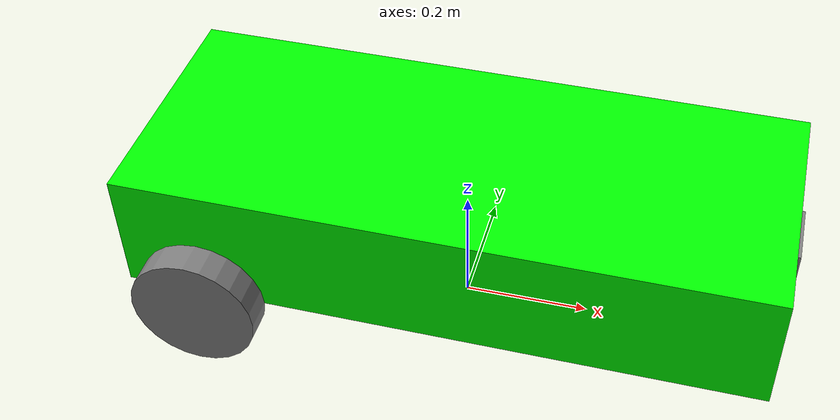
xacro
<?xml version="1.0"?>
<robot name="bot" xmlns:xacro="http://www.ros.org/wiki/xacro" >
    <xacro:include filename="mobile_base.xacro" />
    <xacro:include filename="common_properties.xacro" />
    <xacro:include filename="mobile_base_gazebo.xacro" />
    <xacro:include filename="camera.xacro" />
</robot>

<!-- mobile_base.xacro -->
<robot xmlns:xacro="http://www.ros.org/wiki/xacro" >
    <xacro:property name="base_length" value="1.0" />
    <xacro:property name="base_width" value="0.4" />
    <xacro:property name="base_height" value="0.2" />
    <xacro:property name="wheel_radius" value="0.1" />
    <xacro:property name="wheel_length" value="0.05" />

    <xacro:macro name="box_inertia" params="m x y z o_xyz o_rpy">
        <inertial>
            <mass value="${m}" />
            <origin xyz="${o_xyz}" rpy="${o_rpy}" />
            <inertia ixx="${(m/12)*(y*y + z*z)}" ixy="0" ixz="0"
                     iyy="${(m/12)*(x*x + z*z)}" iyz="0"
                     izz="${(m/12)*(y*y + x*x)}" />
        </inertial>
    </xacro:macro>
    <xacro:macro name="wheel_inertia" params="m x z o_xyz o_rpy">
        <inertial>
            <mass value="${m}" />
            <origin xyz="${o_xyz}" rpy="${o_rpy}" />
            <inertia ixx="${(m/12)*(3*x*x + z*z)}" ixy="0" ixz="0"
                     iyy="${(m/12)*(3*x*x + z*z)}" iyz="0"
                     izz="${(m/2)*(x*x)}" />
        </inertial>
    </xacro:macro>

    <xacro:macro name="caster_inertia" params="m x o_xyz o_rpy">
        <inertial>
            <mass value="${m}" />
            <origin xyz="${o_xyz}" rpy="${o_rpy}" />
            <inertia ixx="${(2 * m / 5)*(x*x)}" ixy="0" ixz="0"
                     iyy="${(2 * m / 5)*(x*x)}" iyz="0"
                     izz="${(2 * m / 5)*(x*x)}" />
        </inertial>
    </xacro:macro>

    <link name="base_footprint">
        <!-- empty -->
    </link>

    <link name="base_link">
        <visual>
            <geometry>
                <box size="${base_length} ${base_width} ${base_height}" />
            </geometry>
            <origin xyz="0 0 ${base_height / 2.0}" rpy="0 0 0" />
            <material name="green" />
        </visual>
        <collision>
            <geometry>
                <box size="${base_length} ${base_width} ${base_height}" />
            </geometry>
            <origin xyz="0 0 ${base_height / 2.0}" rpy="0 0 0" />
        </collision>
        <xacro:box_inertia m="5.0" x="${base_length}" y="${base_width}" z="${base_height}" o_xyz="0 0 ${base_height / 2.0}"
                                                                                           o_rpy="0 0 0" />

    </link>

    <xacro:macro name="wheel_link" params="prefix">
        <link name="${prefix}_wheel_link">
            <visual>
                <geometry>
                    <cylinder radius="${wheel_radius}" length="${wheel_length}" />
                </geometry>
                <origin xyz="0 0 0" rpy="${pi / 2.0} 0 0" />
                <material name="grey" />
            </visual>
            <collision>
                <geometry>
                    <sphere radius="${wheel_radius}" />
                </geometry>
                <origin xyz="0 0 0" rpy="0 0 0" />
            </collision>
            <xacro:wheel_inertia m="1.0" x="${wheel_radius}" z="${wheel_length}" o_xyz="0 0 0"
                                                                               o_rpy="${pi / 2.0} 0 0" />
        </link>
    </xacro:macro>

    <xacro:wheel_link prefix="right" />
    <xacro:wheel_link prefix="left" />

    <link name="caster_wheel_link">
        <visual>
            <geometry>
                <sphere radius="0.05" />
            </geometry>
            <origin xyz="0 0 0" rpy="0 0 0" />
            <material name="grey" />
        </visual>
        <collision>
            <geometry>
                <sphere radius="0.05" />
            </geometry>
            <origin xyz="0 0 0" rpy="0 0 0" />
        </collision>
        <xacro:caster_inertia m="0.5" x="0.05" o_xyz="0 0 0"
                                               o_rpy="0 0 0" />
    </link>
    <joint name="base_joint" type="fixed">
        <parent link="base_footprint" />
        <child link="base_link" />
        <origin xyz="0 0 0.1" rpy="0 0 0" />
    </joint>
    <joint name="base_caster_wheel_joint" type="fixed">
        <parent link="base_link" />
        <child link="caster_wheel_link" />
        <origin xyz="${base_length * (3.0/8.0)} 0 -0.05" rpy="0 0 0" />
    </joint>
    <joint name="left_wheel_base_joint" type="continuous">
        <parent link="base_link" />
        <child link="left_wheel_link" />
        <origin xyz="${-base_length * (3.0/8.0)} ${(base_width / 2.0) + (wheel_length / 2.0)} 0" rpy="0 0 0" />
        <axis xyz="0 1 0" />
        <limit lower="-1.57" upper="1.57" velocity="100" effort="100" />
    </joint>
    <joint name="right_wheel_base_joint" type="continuous">
        <parent link="base_link" />
        <child link="right_wheel_link" />
        <origin xyz="${-base_length * (3.0/8.0)} ${(-base_width / 2.0) + (-wheel_length / 2.0)} 0" rpy="0 0 0" />
        <axis xyz="0 1 0" />
        <limit lower="-1.57" upper="1.57" velocity="100" effort="100" />
    </joint>

</robot>

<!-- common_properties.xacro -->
<robot xmlns:xacro="http://www.ros.org/wiki/xacro" >
    <material name="green">
        <color rgba="0 1 0 1" />
    </material>

    <material name="grey">
        <color rgba="0.5 0.5 0.5 1" />
    </material>

    <material name="orange">
        <color rgba="1 0.5 0 1" />
    </material>

    <material name="yellow">
        <color rgba="1 1 0 1" />
    </material>

</robot>

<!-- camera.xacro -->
<robot xmlns:xacro="http://www.ros.org/wiki/xacro" >
    <xacro:property name="box_length" value="0.01" />
    <xacro:property name="box_width" value="0.1" />
    <xacro:property name="box_height" value="0.1" />
    <link name="camera_link">
        <visual>
            <geometry>
                <box size="${box_length} ${box_width} ${box_height}" />
            </geometry>
            <origin xyz="0 0 0" rpy="0 0 0" />
            <material name="grey" />
        </visual>
        <collision>
            <geometry>
                <box size="${box_length} ${box_width} ${box_height}" />
            </geometry>
            <origin xyz="0 0 0" rpy="0 0 0" />
        </collision>
        <xacro:box_inertia m="0.5" x="${box_length}" y="${box_width}" z="${box_height}" o_xyz="0 0 0"
                                                                                           o_rpy="0 0 0" />
    </link>
    <joint name="base_camera_joint" type="fixed">
        <parent link="base_link"/>
        <child link="camera_link" />
        <origin xyz="${base_length / 2.0 + box_length / 2.0} 0 ${base_height / 2.0}" rpy="0 0 0"/>
    </joint>

    <gazebo reference="camera_link">
        <sensor name="camera" type="camera">
            <camera>
                <horizontal_fov>1.3962634</horizontal_fov>
                <image>
                    <width>640</width>
                    <height>480</height>
                    <format>R8G8B8</format>
                </image>
                <clip>
                    <near>0.1</near>
                    <far>15</far>
                </clip>
                <noise>
                    <type>gaussian</type>
                    <mean>0.0</mean>
                    <stddev>0.007</stddev>
                </noise>
                <optical_frame_id>camera_link</optical_frame_id>
                <camera_info_topic>camera/camera_info</camera_info_topic>
            </camera>
            <always_on>1</always_on>
            <update_rate>20</update_rate>
            <visualize>true</visualize>
            <topic>camera/image_raw</topic>
        </sensor>
    </gazebo>

    <joint name="imu_joint" type="fixed">
        <origin xyz="0 0 0" rpy="0 0 0" />
        <parent link="base_link"/>
        <child link="imu_link" />
    </joint>

    <link name="imu_link">
    </link>

    <gazebo reference="imu_link">
        <sensor name="imu" type="imu">
        <always_on>1</always_on>
        <update_rate>50</update_rate>
        <visualize>true</visualize>
        <topic>imu</topic>
        <enable_metrics>true</enable_metrics>
        <gz_frame_id>imu_link</gz_frame_id>
        </sensor>
    </gazebo>

</robot>
